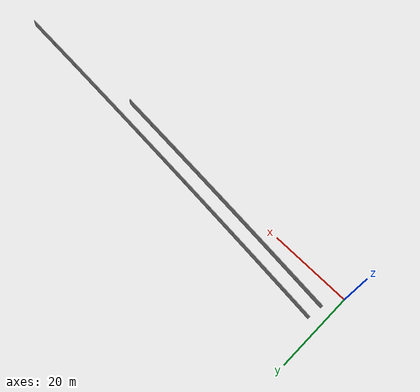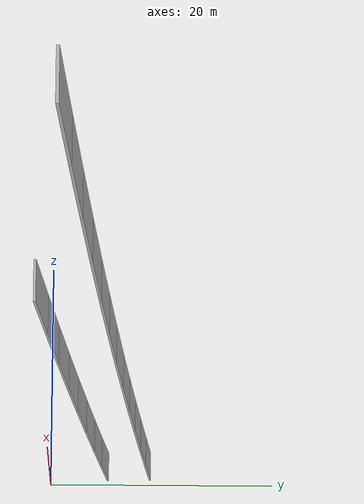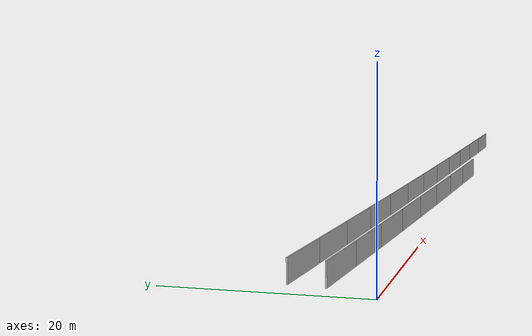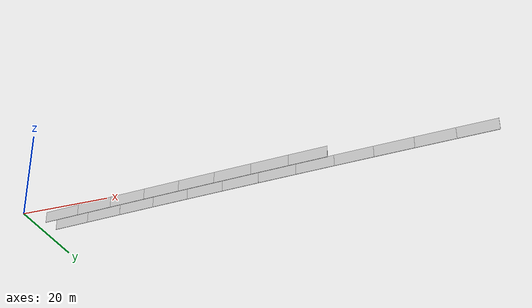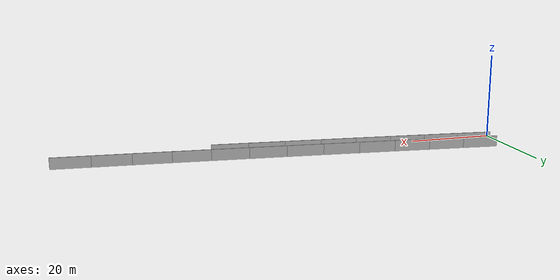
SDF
<?xml version="1.0" ?>
<sdf version="1.6">
  <model name="sps_1901">
    <pose frame="">0 0 0 0 -0 0</pose>
    <static>1</static>
    <self_collide>0</self_collide>
    <allow_auto_disable>0</allow_auto_disable>
    <link name="Wall4279">
      <kinematic>0</kinematic>
      <gravity>1</gravity>
      <self_collide>0</self_collide>
      <collision name="collision">
        <geometry>
          <box>
            <size>8.25179 0.15 2.5</size>
          </box>
        </geometry>
        <pose frame="">0 0 0 0 -0 0</pose>
      </collision>
      <visual name="visual">
        <geometry>
          <box>
            <size>8.25179 0.15 2.5</size>
          </box>
        </geometry>
        <pose frame="">0 0 0 0 -0 0</pose>
        <cast_shadows>1</cast_shadows>
        <transparency>0.0</transparency>
      </visual>
      <pose frame="">7.02444 8.4843 1.25 0 0 -0.0861511</pose>
    </link>
    <link name="Wall4280">
      <kinematic>0</kinematic>
      <gravity>1</gravity>
      <self_collide>0</self_collide>
      <collision name="collision">
        <geometry>
          <box>
            <size>8.25179 0.15 2.5</size>
          </box>
        </geometry>
        <pose frame="">0 0 0 0 -0 0</pose>
      </collision>
      <visual name="visual">
        <geometry>
          <box>
            <size>8.25179 0.15 2.5</size>
          </box>
        </geometry>
        <pose frame="">0 0 0 0 -0 0</pose>
        <cast_shadows>1</cast_shadows>
        <transparency>0.0</transparency>
      </visual>
      <pose frame="">15.2465 7.78398 1.25 0 0 -0.0837905</pose>
    </link>
    <link name="Wall4281">
      <kinematic>0</kinematic>
      <gravity>1</gravity>
      <self_collide>0</self_collide>
      <collision name="collision">
        <geometry>
          <box>
            <size>8.25193 0.15 2.5</size>
          </box>
        </geometry>
        <pose frame="">0 0 0 0 -0 0</pose>
      </collision>
      <visual name="visual">
        <geometry>
          <box>
            <size>8.25193 0.15 2.5</size>
          </box>
        </geometry>
        <pose frame="">0 0 0 0 -0 0</pose>
        <cast_shadows>1</cast_shadows>
        <transparency>0.0</transparency>
      </visual>
      <pose frame="">23.4702 7.10319 1.25 0 0 -0.0813992</pose>
    </link>
    <link name="Wall4282">
      <kinematic>0</kinematic>
      <gravity>1</gravity>
      <self_collide>0</self_collide>
      <collision name="collision">
        <geometry>
          <box>
            <size>8.25173 0.15 2.5</size>
          </box>
        </geometry>
        <pose frame="">0 0 0 0 -0 0</pose>
      </collision>
      <visual name="visual">
        <geometry>
          <box>
            <size>8.25173 0.15 2.5</size>
          </box>
        </geometry>
        <pose frame="">0 0 0 0 -0 0</pose>
        <cast_shadows>1</cast_shadows>
        <transparency>0.0</transparency>
      </visual>
      <pose frame="">31.6955 6.44182 1.25 0 0 -0.0790711</pose>
    </link>
    <link name="Wall4283">
      <kinematic>0</kinematic>
      <gravity>1</gravity>
      <self_collide>0</self_collide>
      <collision name="collision">
        <geometry>
          <box>
            <size>8.2521 0.15 2.5</size>
          </box>
        </geometry>
        <pose frame="">0 0 0 0 -0 0</pose>
      </collision>
      <visual name="visual">
        <geometry>
          <box>
            <size>8.2521 0.15 2.5</size>
          </box>
        </geometry>
        <pose frame="">0 0 0 0 -0 0</pose>
        <cast_shadows>1</cast_shadows>
        <transparency>0.0</transparency>
      </visual>
      <pose frame="">39.9224 5.79982 1.25 0 0 -0.0766862</pose>
    </link>
    <link name="Wall4284">
      <kinematic>0</kinematic>
      <gravity>1</gravity>
      <self_collide>0</self_collide>
      <collision name="collision">
        <geometry>
          <box>
            <size>8.25179 0.15 2.5</size>
          </box>
        </geometry>
        <pose frame="">0 0 0 0 -0 0</pose>
      </collision>
      <visual name="visual">
        <geometry>
          <box>
            <size>8.25179 0.15 2.5</size>
          </box>
        </geometry>
        <pose frame="">0 0 0 0 -0 0</pose>
        <cast_shadows>1</cast_shadows>
        <transparency>0.0</transparency>
      </visual>
      <pose frame="">48.1508 5.17729 1.25 0 0 -0.0743376</pose>
    </link>
    <link name="Wall4285">
      <kinematic>0</kinematic>
      <gravity>1</gravity>
      <self_collide>0</self_collide>
      <collision name="collision">
        <geometry>
          <box>
            <size>8.25171 0.15 2.5</size>
          </box>
        </geometry>
        <pose frame="">0 0 0 0 -0 0</pose>
      </collision>
      <visual name="visual">
        <geometry>
          <box>
            <size>8.25171 0.15 2.5</size>
          </box>
        </geometry>
        <pose frame="">0 0 0 0 -0 0</pose>
        <cast_shadows>1</cast_shadows>
        <transparency>0.0</transparency>
      </visual>
      <pose frame="">56.3805 4.57417 1.25 0 0 -0.0719725</pose>
    </link>
    <link name="Wall4286">
      <kinematic>0</kinematic>
      <gravity>1</gravity>
      <self_collide>0</self_collide>
      <collision name="collision">
        <geometry>
          <box>
            <size>8.2522 0.15 2.5</size>
          </box>
        </geometry>
        <pose frame="">0 0 0 0 -0 0</pose>
      </collision>
      <visual name="visual">
        <geometry>
          <box>
            <size>8.2522 0.15 2.5</size>
          </box>
        </geometry>
        <pose frame="">0 0 0 0 -0 0</pose>
        <cast_shadows>1</cast_shadows>
        <transparency>0.0</transparency>
      </visual>
      <pose frame="">64.6117 3.99068 1.25 0 0 -0.0695659</pose>
    </link>
    <link name="Wall4287">
      <kinematic>0</kinematic>
      <gravity>1</gravity>
      <self_collide>0</self_collide>
      <collision name="collision">
        <geometry>
          <box>
            <size>8.25187 0.15 2.5</size>
          </box>
        </geometry>
        <pose frame="">0 0 0 0 -0 0</pose>
      </collision>
      <visual name="visual">
        <geometry>
          <box>
            <size>8.25187 0.15 2.5</size>
          </box>
        </geometry>
        <pose frame="">0 0 0 0 -0 0</pose>
        <cast_shadows>1</cast_shadows>
        <transparency>0.0</transparency>
      </visual>
      <pose frame="">72.8445 3.42659 1.25 0 0 -0.0672555</pose>
    </link>
    <link name="Wall4288">
      <kinematic>0</kinematic>
      <gravity>1</gravity>
      <self_collide>0</self_collide>
      <collision name="collision">
        <geometry>
          <box>
            <size>8.25174 0.15 2.5</size>
          </box>
        </geometry>
        <pose frame="">0 0 0 0 -0 0</pose>
      </collision>
      <visual name="visual">
        <geometry>
          <box>
            <size>8.25174 0.15 2.5</size>
          </box>
        </geometry>
        <pose frame="">0 0 0 0 -0 0</pose>
        <cast_shadows>1</cast_shadows>
        <transparency>0.0</transparency>
      </visual>
      <pose frame="">81.0783 2.88179 1.25 0 0 -0.0648845</pose>
    </link>
    <link name="Wall4289">
      <kinematic>0</kinematic>
      <gravity>1</gravity>
      <self_collide>0</self_collide>
      <collision name="collision">
        <geometry>
          <box>
            <size>8.25213 0.15 2.5</size>
          </box>
        </geometry>
        <pose frame="">0 0 0 0 -0 0</pose>
      </collision>
      <visual name="visual">
        <geometry>
          <box>
            <size>8.25213 0.15 2.5</size>
          </box>
        </geometry>
        <pose frame="">0 0 0 0 -0 0</pose>
        <cast_shadows>1</cast_shadows>
        <transparency>0.0</transparency>
      </visual>
      <pose frame="">89.3135 2.35658 1.25 0 0 -0.0624949</pose>
    </link>
    <link name="Wall4290">
      <kinematic>0</kinematic>
      <gravity>1</gravity>
      <self_collide>0</self_collide>
      <collision name="collision">
        <geometry>
          <box>
            <size>8.25169 0.15 2.5</size>
          </box>
        </geometry>
        <pose frame="">0 0 0 0 -0 0</pose>
      </collision>
      <visual name="visual">
        <geometry>
          <box>
            <size>8.25169 0.15 2.5</size>
          </box>
        </geometry>
        <pose frame="">0 0 0 0 -0 0</pose>
        <cast_shadows>1</cast_shadows>
        <transparency>0.0</transparency>
      </visual>
      <pose frame="">97.5499 1.85078 1.25 0 0 -0.0601714</pose>
    </link>
    <link name="Wall9021">
      <kinematic>0</kinematic>
      <gravity>1</gravity>
      <self_collide>0</self_collide>
      <collision name="collision">
        <geometry>
          <box>
            <size>8.26187 0.15 2.5</size>
          </box>
        </geometry>
        <pose frame="">0 0 0 0 -0 0</pose>
      </collision>
      <visual name="visual">
        <geometry>
          <box>
            <size>8.26187 0.15 2.5</size>
          </box>
        </geometry>
        <pose frame="">0 0 0 0 -0 0</pose>
        <cast_shadows>1</cast_shadows>
        <transparency>0.0</transparency>
      </visual>
      <pose frame="">6.58266 4.75191 1.25 0 0 -0.0861867</pose>
    </link>
    <link name="Wall9022">
      <kinematic>0</kinematic>
      <gravity>1</gravity>
      <self_collide>0</self_collide>
      <collision name="collision">
        <geometry>
          <box>
            <size>8.26179 0.15 2.5</size>
          </box>
        </geometry>
        <pose frame="">0 0 0 0 -0 0</pose>
      </collision>
      <visual name="visual">
        <geometry>
          <box>
            <size>8.26179 0.15 2.5</size>
          </box>
        </geometry>
        <pose frame="">0 0 0 0 -0 0</pose>
        <cast_shadows>1</cast_shadows>
        <transparency>0.0</transparency>
      </visual>
      <pose frame="">14.8147 4.05049 1.25 0 0 -0.0838149</pose>
    </link>
    <link name="Wall9023">
      <kinematic>0</kinematic>
      <gravity>1</gravity>
      <self_collide>0</self_collide>
      <collision name="collision">
        <geometry>
          <box>
            <size>8.26201 0.15 2.5</size>
          </box>
        </geometry>
        <pose frame="">0 0 0 0 -0 0</pose>
      </collision>
      <visual name="visual">
        <geometry>
          <box>
            <size>8.26201 0.15 2.5</size>
          </box>
        </geometry>
        <pose frame="">0 0 0 0 -0 0</pose>
        <cast_shadows>1</cast_shadows>
        <transparency>0.0</transparency>
      </visual>
      <pose frame="">23.0484 3.36858 1.25 0 0 -0.081448</pose>
    </link>
    <link name="Wall9024">
      <kinematic>0</kinematic>
      <gravity>1</gravity>
      <self_collide>0</self_collide>
      <collision name="collision">
        <geometry>
          <box>
            <size>8.26179 0.15 2.5</size>
          </box>
        </geometry>
        <pose frame="">0 0 0 0 -0 0</pose>
      </collision>
      <visual name="visual">
        <geometry>
          <box>
            <size>8.26179 0.15 2.5</size>
          </box>
        </geometry>
        <pose frame="">0 0 0 0 -0 0</pose>
        <cast_shadows>1</cast_shadows>
        <transparency>0.0</transparency>
      </visual>
      <pose frame="">31.2837 2.7061 1.25 0 0 -0.0790933</pose>
    </link>
    <link name="Wall9025">
      <kinematic>0</kinematic>
      <gravity>1</gravity>
      <self_collide>0</self_collide>
      <collision name="collision">
        <geometry>
          <box>
            <size>8.26191 0.15 2.5</size>
          </box>
        </geometry>
        <pose frame="">0 0 0 0 -0 0</pose>
      </collision>
      <visual name="visual">
        <geometry>
          <box>
            <size>8.26191 0.15 2.5</size>
          </box>
        </geometry>
        <pose frame="">0 0 0 0 -0 0</pose>
        <cast_shadows>1</cast_shadows>
        <transparency>0.0</transparency>
      </visual>
      <pose frame="">39.5204 2.06309 1.25 0 0 -0.0767209</pose>
    </link>
    <link name="Wall9026">
      <kinematic>0</kinematic>
      <gravity>1</gravity>
      <self_collide>0</self_collide>
      <collision name="collision">
        <geometry>
          <box>
            <size>8.26166 0.15 2.5</size>
          </box>
        </geometry>
        <pose frame="">0 0 0 0 -0 0</pose>
      </collision>
      <visual name="visual">
        <geometry>
          <box>
            <size>8.26166 0.15 2.5</size>
          </box>
        </geometry>
        <pose frame="">0 0 0 0 -0 0</pose>
        <cast_shadows>1</cast_shadows>
        <transparency>0.0</transparency>
      </visual>
      <pose frame="">47.7587 1.43959 1.25 0 0 -0.0743598</pose>
    </link>
    <link name="Wall9027">
      <kinematic>0</kinematic>
      <gravity>1</gravity>
      <self_collide>0</self_collide>
      <collision name="collision">
        <geometry>
          <box>
            <size>8.26177 0.15 2.5</size>
          </box>
        </geometry>
        <pose frame="">0 0 0 0 -0 0</pose>
      </collision>
      <visual name="visual">
        <geometry>
          <box>
            <size>8.26177 0.15 2.5</size>
          </box>
        </geometry>
        <pose frame="">0 0 0 0 -0 0</pose>
        <cast_shadows>1</cast_shadows>
        <transparency>0.0</transparency>
      </visual>
      <pose frame="">55.9983 0.835494 1.25 0 0 -0.0720107</pose>
    </link>
    <link name="Wall9028">
      <kinematic>0</kinematic>
      <gravity>1</gravity>
      <self_collide>0</self_collide>
      <collision name="collision">
        <geometry>
          <box>
            <size>8.26225 0.15 2.5</size>
          </box>
        </geometry>
        <pose frame="">0 0 0 0 -0 0</pose>
      </collision>
      <visual name="visual">
        <geometry>
          <box>
            <size>8.26225 0.15 2.5</size>
          </box>
        </geometry>
        <pose frame="">0 0 0 0 -0 0</pose>
        <cast_shadows>1</cast_shadows>
        <transparency>0.0</transparency>
      </visual>
      <pose frame="">64.2396 0.250991 1.25 0 0 -0.0695996</pose>
    </link>
  </model>
</sdf>
